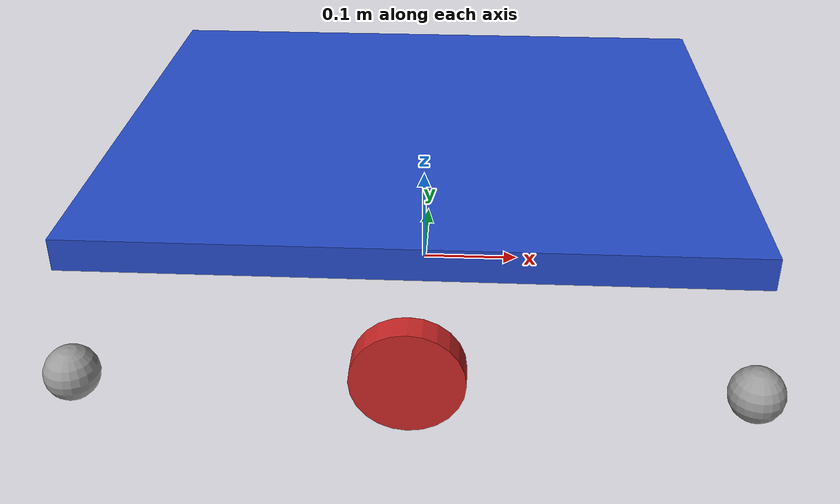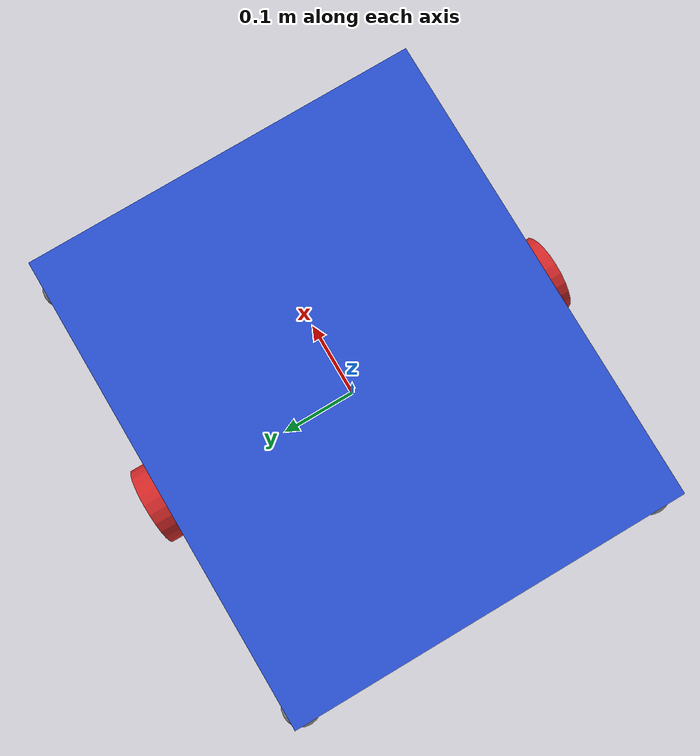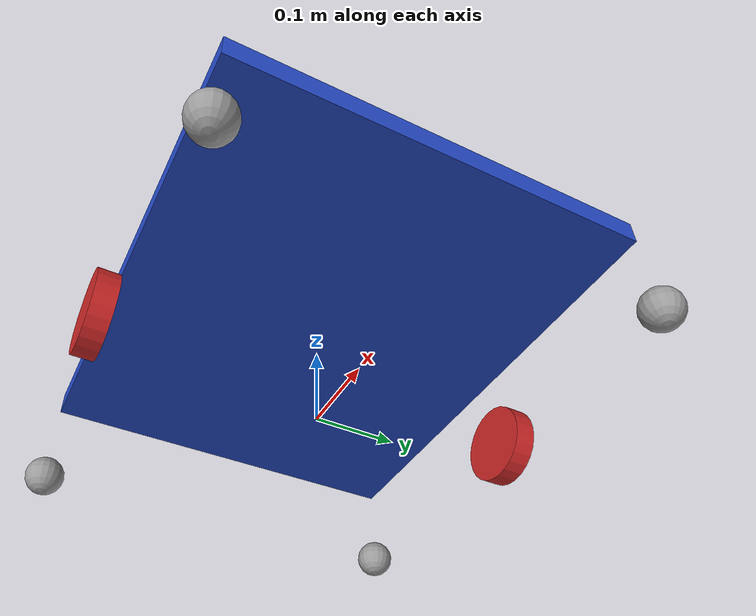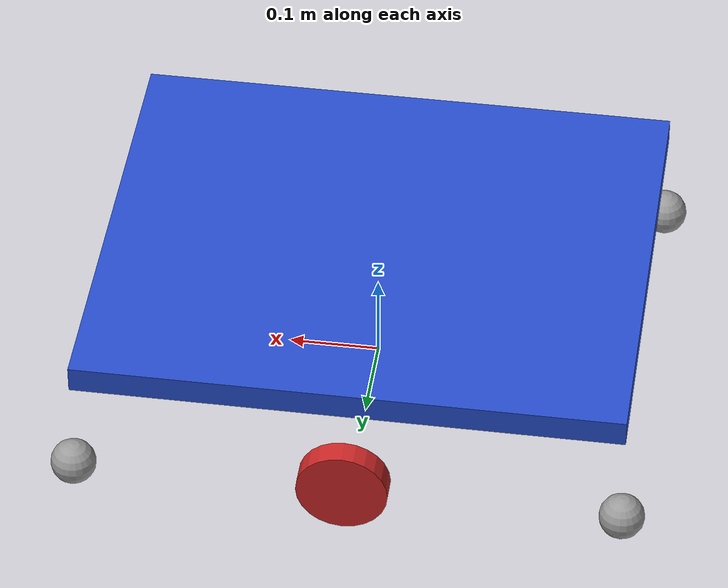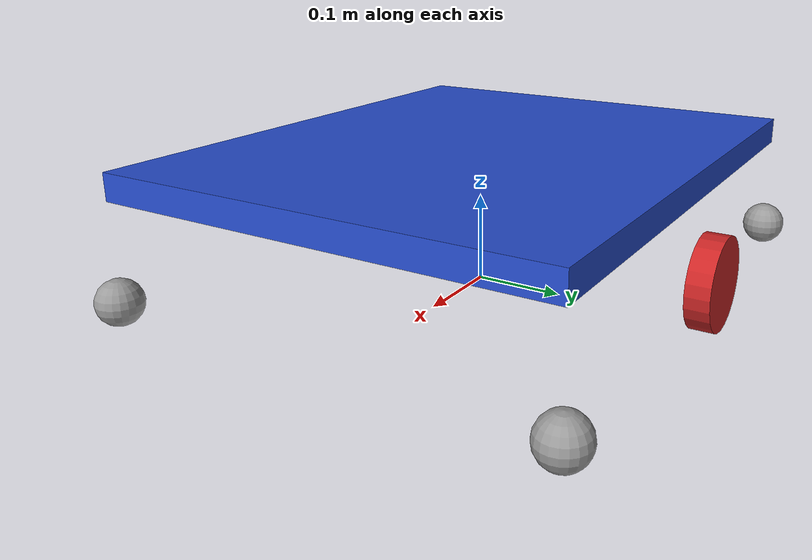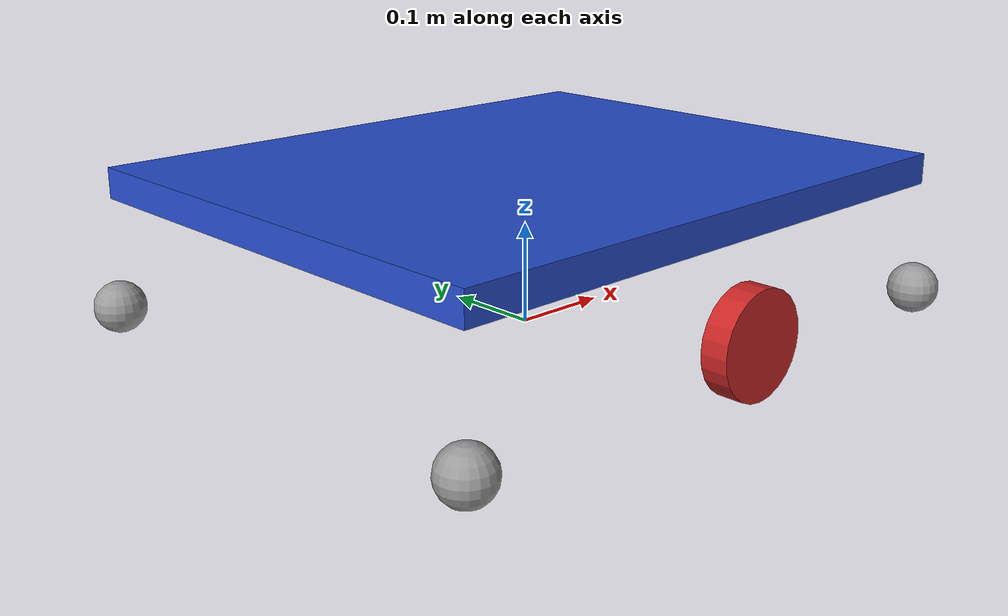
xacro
<?xml version="1.0"?>        <!-- to recognize the file as xml file, URDF uses metric system -->
<robot xmlns:xacro="http://www.ros.org/wiki/xacro">

    <!-- declared variables -->
    <xacro:property name="base_length" value="0.6" />
    <xacro:property name="base_width" value="0.5" />
    <xacro:property name="base_height" value="0.03" />
    <xacro:property name="wheel_radius" value="0.05" />
    <xacro:property name="wheel_length" value="0.026" />
    <xacro:property name="caster_wheel_radius" value="${wheel_radius / 2.0}" />
    <xacro:property name="base_mass" value="5.0" />
    <xacro:property name="wheel_mass" value="1.00" />
    <xacro:property name="castor_wheel_mass" value="0.5" />

    <!-- robot links -->

    <link name="base_footprint" />

    <link name="base_link" >
        <visual>
            <geometry>
                <box size="${base_length} ${base_width} ${base_height}" />
            </geometry>
            <origin xyz="0 0 0" rpy="0 0 0" />
            <material name="blue" />
        </visual>
        <collision>
            <geometry>
                <box size="${base_length} ${base_width} ${base_height}" />     <!-- set size -->
            </geometry>
            <origin xyz="0 0 0" rpy="0 0 0" />
        </collision>
        <xacro:box_inertia m="${base_mass}" l="${2*base_length}" w="${2*base_width}" h="${2*base_height}"
                           xyz="0 0 ${wheel_radius}" rpy="0 0 0" />
    </link>

    <link name="left_wheel_link">    <!-- set second link name -->
        <visual>
            <geometry>
                <cylinder radius="${wheel_radius}" length="${wheel_length}" />     <!-- set size -->
            </geometry>
            <origin xyz="0 0 0" rpy="0 0 0" />
            <material name="red" />
        </visual>
        <collision>
            <geometry>
                <cylinder radius="${wheel_radius}" length="${wheel_length}" />     <!-- set size -->
            </geometry>
            <origin xyz="0 0 0" rpy="0 0 0" />
        </collision>
        <xacro:cylinder_inertia m="${wheel_mass}" r="${2*wheel_radius}" h="${2*wheel_length}"
                                xyz="0 0 0" rpy="0 0 0" />
    </link>

    <link name="right_wheel_link">    <!-- set second link name -->
        <visual>
            <geometry>
                <cylinder radius="${wheel_radius}" length="${wheel_length}" />     <!-- set size -->
            </geometry>
            <origin xyz="0 0 0" rpy="0 0 0" />
            <material name="red" />
        </visual>
        <collision>
            <geometry>
                <cylinder radius="${wheel_radius}" length="${wheel_length}" />     <!-- set size -->
            </geometry>
            <origin xyz="0 0 0" rpy="0 0 0" />
        </collision>
        <xacro:cylinder_inertia m="${wheel_mass}" r="${2*wheel_radius}" h="${2*wheel_length}"
                                xyz="0 0 0" rpy="0 0 0" />
    </link>

    <!-- macro for defining castor wheel links -->
    <xacro:macro name="castor_wheel_link" params="prefix">
        <link name="${prefix}_castor_wheel_link">    <!-- set second link name -->
            <visual>
                <geometry>
                    <sphere radius="${caster_wheel_radius}" />     <!-- set size -->
                </geometry>
                <origin xyz="0 0 0" rpy="0 0 0" />
                <material name="grey" />
            </visual>
            <collision>
                <geometry>
                    <sphere radius="${caster_wheel_radius}" />     <!-- set size -->
                </geometry>
                <origin xyz="0 0 0" rpy="0 0 0" />
            </collision>
            <xacro:sphere_inertia m="${castor_wheel_mass}" r="${2*caster_wheel_radius}"
                                    xyz="0 0 0" rpy="0 0 0" />
        </link>
    </xacro:macro>

    <xacro:castor_wheel_link prefix="front_right" />
    <xacro:castor_wheel_link prefix="back_right" />
    <xacro:castor_wheel_link prefix="back_left" />
    <xacro:castor_wheel_link prefix="front_left" />

    <!-- robot joints -->

    <joint name="footprint_base_jont" type="fixed">
        <parent link="base_footprint" />
        <child link="base_link" />
        <origin xyz="0 0 ${wheel_radius + 0.097}" rpy="0 0 0" />
    </joint>

    <joint name="base_right_wheel_joint" type="continuous">
        <parent link="base_link" />
        <child link="right_wheel_link" />
        <origin xyz="0 -0.27 -0.097" rpy="${pi / 2} 0 0" />
        <axis xyz="0 0 -1" />
    </joint>

    <joint name="base_left_wheel_joint" type="continuous">
        <parent link="base_link" />
        <child link="left_wheel_link" />
        <origin xyz="0 0.27 -0.097" rpy="${pi / 2} 0 0" />
        <axis xyz="0 0 -1" />
    </joint>

    <!-- macro for defining castor wheel joints -->
    <xacro:macro name="castor_wheel_joint" params="prefix parent child xyz rpy axis">
        <joint name="${prefix}_joint" type="fixed">
            <parent link="${parent}" />
            <child link="${child}" />
            <origin xyz="${xyz}" rpy="${rpy}" />
            <axis xyz="${axis}" />
        </joint>
    </xacro:macro>

    <xacro:castor_wheel_joint prefix="base_front_right_castor" parent="base_link" child="front_right_castor_wheel_link"
                              xyz="${base_length / 2} ${-base_width / 2} -0.122" rpy="0 0 0" axis="0 0 1" />

    <xacro:castor_wheel_joint prefix="base_back_right_castor" parent="base_link" child="front_left_castor_wheel_link"
                              xyz="${base_length / 2} ${base_width / 2} -0.122" rpy="0 0 0" axis="0 0 1" />

    <xacro:castor_wheel_joint prefix="base_back_left_castor" parent="base_link" child="back_left_castor_wheel_link"
                              xyz="${-base_length / 2} ${base_width / 2} -0.122" rpy="0 0 0" axis="0 0 1" />

    <xacro:castor_wheel_joint prefix="base_front_left_castor" parent="base_link" child="back_right_castor_wheel_link"
                              xyz="${-base_length / 2} ${-base_width / 2} -0.122" rpy="0 0 0" axis="0 0 1" />

</robot>
